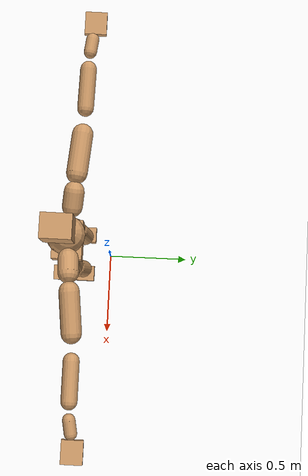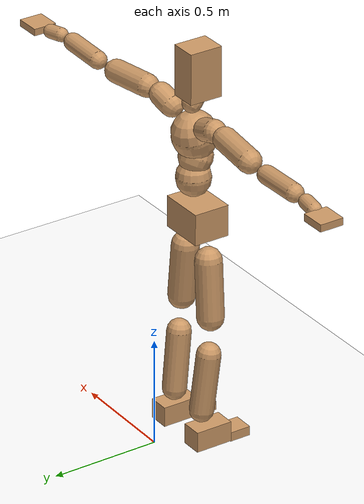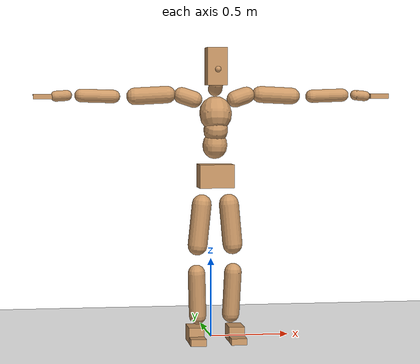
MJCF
<mujoco model="humanoid">
  <option integrator="implicitfast" />

  <visual>
    <global offwidth="1280" offheight="960" />
    <headlight active="1" ambient="0.34 0.34 0.34" diffuse="0.5 0.5 0.5" />
  </visual>

  <default>
    <joint damping="2" stiffness="2" armature="0.01" limited="true" solimplimit="0 .99 .01" />
    <geom condim="1" friction="0.7 0.005 0.0001" solimp=".99 .99 .003" solref="0.015 1" margin="0.001" rgba="0.8 0.6 .4 1" />
    <default class="smplcontact">
      <geom condim="3" friction="1. 0.005 0.0001" solref="0.015 1" solimp="0.98 0.98 0.001" priority="1" />
    </default>
    <default class="stiff_medium">
      <joint stiffness="10" />
    </default>
    <default class="stiff_medium_higher">
      <joint stiffness="50" />
    </default>
    <default class="stiff_high">
      <joint stiffness="100" />
    </default>
  </default>

  <asset>
    <texture type="skybox" builtin="gradient" rgb1="0.99 0.99 0.99" rgb2="0.608 0.828 0.892" width="100" />
    <texture builtin="flat" height="1278" mark="cross" markrgb="1 1 1" name="texgeom" random="0.01" rgb1="0.8 0.6 0.4" rgb2="0.8 0.6 0.4" type="cube" width="127" />
    <texture name="texplane" type="2d" builtin="checker" markrgb="1 1 1" rgb1="0.756 0.772 0.76" rgb2="0.6 0.6 0.6" width="100" height="100" />
    <material name="MatPlane" reflectance="0.5" texture="texplane" texrepeat="1 1" texuniform="true" />
    <material name="geom" texture="texgeom" texuniform="true" />
  </asset>

  <worldbody>
    <light name="tracking_light" pos="0 0 7" dir="0 0 -1" directional="true" cutoff="100" exponent="1" diffuse="1 1 1" specular="0.1 0.1 0.1" mode="trackcom" />
    <camera name="back" pos="0 3 2.4" xyaxes="-1 0 0 0 -1 2" mode="trackcom" />
    <camera name="side" pos="-3 0 2.4" xyaxes="0 -1 0 1 0 2" mode="trackcom" />
    <camera name="front_side" pos="-2.8 -2.8 0.8" xyaxes="0.5 -0.5 0 0.1 0.1 1" mode="trackcom" />
    <geom condim="3" name="floor" pos="0 0 0" rgba="1 1 1 1" size="100 100 .2" type="plane" material="MatPlane" />
    <body name="Pelvis" pos="-0.0018 -0.2233 1.05109" euler="90 0 0">
      <site name="Pelvis" size="0.01" />
      <freejoint name="Pelvis" />
      <geom type="box" pos="-0.0000 -0.0121 -0.0055" size="0.1069 0.0722 0.083" quat="1.0000 0.0000 0.0000 0.0000" density="3165.830099" name="Pelvis" />
      <body name="L_Hip" pos="0.0781875 -0.102825 -0.00765">
        <joint name="L_Hip_x" type="hinge" pos="0 0 0" axis="1 0 0" stiffness="12.190417346938776" range="-160.0 22.92" class="stiff_medium" damping="19.23943835853268" armature="0.013495335550763796"/>
        <joint name="L_Hip_y" type="hinge" pos="0 0 0" axis="0 1 0" stiffness="12.1624156122449" range="-70.0 70.0" class="stiff_medium" damping="12.013485255911053" armature="0.01186637857110307"/>
        <joint name="L_Hip_z" type="hinge" pos="0 0 0" axis="0 0 1" stiffness="12.164813061224491" range="-28.65 90.0" class="stiff_medium" damping="12.81394800146982" armature="0.013497721876857561"/>
        <geom type="capsule" density="2040.816327" fromto="0.0077625 -0.084375 -0.0010125 0.030825 -0.337725 -0.00405" size="0.0615" name="L_Hip" />
        <body name="L_Knee" pos="0.0385875 -0.4221 -0.0050625">
          <joint name="L_Knee_x" type="hinge" pos="0 0 0" axis="1 0 0" range="-5.16 171.89" damping="10.076823862713262" armature="0.013188848617403126" stiffness="2.4059714693877554"/>
          <joint name="L_Knee_y" type="hinge" pos="0 0 0" axis="0 1 0" range="-4.58 6.88" damping="9.486100019400169" armature="0.01159601950664257" stiffness="2.4250264693877552"/>
          <joint name="L_Knee_z" type="hinge" pos="0 0 0" axis="0 0 1" range="-6.88 4.58" damping="10.063496829521759" armature="0.013200099383969129" stiffness="2.3975664285714284"/>
          <geom type="capsule" density="1234.567901" fromto="-0.0030375 -0.08955 -0.0097875 -0.0122625 -0.3582 -0.039375" size="0.0541" name="L_Knee" />
          <body name="L_Ankle" pos="-0.0153 -0.44775 -0.0491625">
            <joint name="L_Ankle_x" type="hinge" pos="0 0 0" axis="1 0 0" range="-45.84 45.84" class="stiff_medium" damping="6.8975328184231675" armature="0.011747130867095487" stiffness="11.250018673469388"/>
            <joint name="L_Ankle_y" type="hinge" pos="0 0 0" axis="0 1 0" range="-74.48 22.92" class="stiff_medium" damping="3.4392113884775433" armature="0.011682135831686723" stiffness="11.250011836734695"/>
            <joint name="L_Ankle_z" type="hinge" pos="0 0 0" axis="0 0 1" range="-4.58 4.58" class="stiff_medium" damping="6.7519785458254615" armature="0.011256596119330203" stiffness="11.25"/>
            <geom type="box" pos="0.0262125 -0.0268875 0.027225" size="0.0483 0.0464 0.085" quat="1.0000 0.0000 0.0000 0.0000" density="449.071558" name="L_Ankle" class="smplcontact" />
            <body name="L_Toe" pos="0.0297 -0.062775 0.134213">
              <joint name="L_Toe_x" type="hinge" pos="0 0 0" axis="1 0 0" range="-91.67 22.92" armature="0.011009874139729875" damping="2.22585789368469" stiffness="2.25"/>
              <joint name="L_Toe_y" type="hinge" pos="0 0 0" axis="0 1 0" range="-4.58 4.58" armature="0.010711537859158219" damping="2.195493574716446" stiffness="2.25"/>
              <joint name="L_Toe_z" type="hinge" pos="0 0 0" axis="0 0 1" range="-4.58 4.58" armature="0.010108317957718379" damping="2.1327782540557916" stiffness="2.25"/>
              <geom type="box" pos="-0.003375 0.0061875 0.0279" size="0.0478 0.02 0.0496" quat="1.0000 0.0000 0.0000 0.0000" density="423.206892" name="L_Toe" class="smplcontact" />
            </body>
          </body>
        </body>
      </body>
      <body name="R_Hip" pos="-0.0761625 -0.101813 -0.0048375">
        <joint name="R_Hip_x" type="hinge" pos="0 0 0" axis="1 0 0" stiffness="12.190417346938776" range="-160.0 22.92" class="stiff_medium" damping="19.23943835853268" armature="0.013495335550763796"/>
        <joint name="R_Hip_y" type="hinge" pos="0 0 0" axis="0 1 0" stiffness="12.1624156122449" range="-70.0 70.0" class="stiff_medium" damping="12.013485255911053" armature="0.01186637857110307"/>
        <joint name="R_Hip_z" type="hinge" pos="0 0 0" axis="0 0 1" stiffness="12.164813061224491" range="-90.0 28.65" class="stiff_medium" damping="12.81394800146982" armature="0.013497721876857561"/>
        <geom type="capsule" density="2040.816327" fromto="-0.0086625 -0.0860625 -0.002025 -0.034425 -0.344362 -0.0079875" size="0.0606" name="R_Hip" />
        <body name="R_Knee" pos="-0.0430875 -0.430425 -0.0100125">
          <joint name="R_Knee_x" type="hinge" pos="0 0 0" axis="1 0 0" range="-5.16 171.89" damping="10.076823862713262" armature="0.013188848617403126" stiffness="2.4059714693877554"/>
          <joint name="R_Knee_y" type="hinge" pos="0 0 0" axis="0 1 0" range="-6.88 4.58" damping="9.486100019400169" armature="0.01159601950664257" stiffness="2.4250264693877552"/>
          <joint name="R_Knee_z" type="hinge" pos="0 0 0" axis="0 0 1" range="-4.58 6.88" damping="10.063496829521759" armature="0.013200099383969129" stiffness="2.3975664285714284"/>
          <geom type="capsule" density="1234.567901" fromto="0.0036 -0.0896625 -0.0095625 0.014175 -0.358537 -0.038025" size="0.0541" name="R_Knee" />
          <body name="R_Ankle" pos="0.017775 -0.4482 -0.0475875">
            <joint name="R_Ankle_x" type="hinge" pos="0 0 0" axis="1 0 0" range="-45.84 45.84" class="stiff_medium" damping="6.8975328184231675" armature="0.011747130867095487" stiffness="11.250018673469388"/>
            <joint name="R_Ankle_y" type="hinge" pos="0 0 0" axis="0 1 0" range="-22.92 74.48" class="stiff_medium" damping="3.4392113884775433" armature="0.011682135831686723" stiffness="11.250011836734695"/>
            <joint name="R_Ankle_z" type="hinge" pos="0 0 0" axis="0 0 1" range="-4.58 4.58" class="stiff_medium" damping="6.7519785458254615" armature="0.011256596119330203" stiffness="11.25"/>
            <geom type="box" pos="-0.02385 -0.019575 0.0288" size="0.0483 0.0478 0.0865" quat="1.0000 0.0000 0.0000 0.0000" density="434.700981" name="R_Ankle" class="smplcontact" />
            <body name="R_Toe" pos="-0.028575 -0.0541125 0.138713">
              <joint name="R_Toe_x" type="hinge" pos="0 0 0" axis="1 0 0" range="-91.67 22.92" armature="0.011009874139729875" damping="2.22585789368469" stiffness="2.25"/>
              <joint name="R_Toe_y" type="hinge" pos="0 0 0" axis="0 1 0" range="-4.58 4.58" armature="0.010711537859158219" damping="2.195493574716446" stiffness="2.25"/>
              <joint name="R_Toe_z" type="hinge" pos="0 0 0" axis="0 0 1" range="-4.58 4.58" armature="0.010108317957718379" damping="2.1327782540557916" stiffness="2.25"/>
              <geom type="box" pos="0.004725 0.0050625 0.0255375" size="0.0479 0.0216 0.0493" quat="1.0000 0.0000 0.0000 0.0000" density="407.384095" name="R_Toe" class="smplcontact" />
            </body>
          </body>
        </body>
      </body>
      <body name="Torso" pos="-0.0025 0.109 -0.0267">
        <joint name="Torso_x" type="hinge" pos="0 0 0" axis="1 0 0" range="-25.78 57.3" class="stiff_medium" damping="16.94478917737132" armature="0.011576079564418827" stiffness="11.023723673469387"/>
        <joint name="Torso_y" type="hinge" pos="0 0 0" axis="0 1 0" range="-57.3 57.3" class="stiff_high" damping="29.115087567135376" armature="0.01937626790595331" stiffness="109.37198124999998"/>
        <joint name="Torso_z" type="hinge" pos="0 0 0" axis="0 0 1" range="-34.38 34.38" class="stiff_high" damping="24.64077151532871" armature="0.014228244849331766" stiffness="106.68350652173912"/>
        <geom type="capsule" density="2040.816327" fromto="0.0025 0.0608 0.0005 0.003 0.0743 0.0006" size="0.0769" name="Torso" />
        <body name="Spine" pos="0.0055 0.1352 0.0011">
          <joint name="Spine_x" type="hinge" pos="0 0 0" axis="1 0 0" stiffness="11.23382224489796" range="-25.78 57.3" class="stiff_medium" damping="17.41106230963078" armature="0.011993349058515354"/>
          <joint name="Spine_y" type="hinge" pos="0 0 0" axis="0 1 0" stiffness="11.67224088888889" range="-57.3 57.3" class="stiff_high" damping="12.051053820080996" armature="0.019440876268553408"/>
          <joint name="Spine_z" type="hinge" pos="0 0 0" axis="0 0 1" stiffness="22.9563125" range="-34.38 34.38" class="stiff_high" damping="16.317554444807215" armature="0.016109257231005366"/>
          <geom type="capsule" density="2040.816327" fromto="0.0007 0.0238 0.0114 0.0008 0.0291 0.014" size="0.0755" name="Spine" />
          <body name="Chest" pos="0.0015 0.0529 0.0254">
            <joint name="Chest_x" type="hinge" pos="0 0 0" axis="1 0 0" stiffness="11.776115531914895" range="-25.78 57.3" class="stiff_medium" damping="18.021102303759776" armature="0.012256829035287803"/>
            <joint name="Chest_y" type="hinge" pos="0 0 0" axis="0 1 0" stiffness="13.448267333333334" range="-57.3 57.3" class="stiff_high" damping="12.937740431789003" armature="0.019447803587290643"/>
            <joint name="Chest_z" type="hinge" pos="0 0 0" axis="0 0 1" stiffness="23.267014782608697" range="-34.38 34.38" class="stiff_high" damping="16.847528832624963" armature="0.01694334891512798"/>
            <geom type="capsule" density="2040.816327" fromto="-0.0009 0.0682 -0.0173 -0.001 0.0833 -0.0212" size="0.1002" name="Chest" />
            <body name="Neck" pos="-0.0028 0.2139 -0.0429">
              <joint name="Neck_x" type="hinge" pos="0 0 0" axis="1 0 0" range="-28.65 57.3" class="stiff_medium_higher" damping="10.000000000000014" armature="0.01000000000000003" stiffness="50.0"/>
              <joint name="Neck_y" type="hinge" pos="0 0 0" axis="0 1 0" range="-40.11 40.11" class="stiff_medium_higher" damping="10.0" armature="0.01" stiffness="50.0"/>
              <joint name="Neck_z" type="hinge" pos="0 0 0" axis="0 0 1" range="-40.11 40.11" class="stiff_medium_higher" damping="9.999999999999993" armature="0.009999999999999985" stiffness="50.0"/>
              <geom type="capsule" density="1000" fromto="0.001 0.013 0.0103 0.0041 0.052 0.0411" size="0.0436" name="Neck" />
              <body name="Head" pos="0.0052 0.065 0.0513">
                <joint name="Head_x" type="hinge" pos="0 0 0" axis="1 0 0" range="-28.65 57.3" class="stiff_medium_higher" damping="2.0000000000000067" armature="0.01000000000000007" stiffness="50.0"/>
                <joint name="Head_y" type="hinge" pos="0 0 0" axis="0 1 0" range="-40.11 40.11" class="stiff_medium_higher" damping="2.0" armature="0.01" stiffness="50.0"/>
                <joint name="Head_z" type="hinge" pos="0 0 0" axis="0 0 1" range="-40.11 40.11" class="stiff_medium_higher" damping="2.0000000000000036" armature="0.010000000000000038" stiffness="50.0"/>
                <geom type="box" pos="-0.0042 0.0876 -0.0116" size="0.0606 0.1154 0.076" quat="1.0000 0.0000 0.0000 0.0000" density="1018.069894" name="Head" />
                <geom type="capsule" name="nose" size="0.02 0.01" pos="0 0.07 0.05" quat="1 0 0 0" mass="0" contype="0" conaffinity="0" />
              </body>
            </body>
            <body name="L_Thorax" pos="0.10244 0.15821 -0.04433">
              <joint name="L_Thorax_x" type="hinge" pos="0 0 0" axis="1 0 0" range="-10.89 4.58" class="stiff_medium_higher" damping="31.589735797957733" armature="0.016223873504270177" stiffness="76.88603214285715"/>
              <joint name="L_Thorax_y" type="hinge" pos="0 0 0" axis="0 1 0" range="-28.65 17.19" class="stiff_medium_higher" damping="34.89989559971406" armature="0.01967496307175568" stiffness="77.38278265306123"/>
              <joint name="L_Thorax_z" type="hinge" pos="0 0 0" axis="0 0 1" range="-31.51 40.11" class="stiff_medium_higher" damping="34.901462278801546" armature="0.019678125977203684" stiffness="77.37729132653061"/>
              <geom type="capsule" density="1000" fromto="0.02366 0.00793 -0.00234 0.09464 0.03172 -0.00923" size="0.0521" name="L_Thorax" />
              <body name="L_Shoulder" pos="0.1183 0.03965 -0.01157">
                <joint name="L_Shoulder_x" type="hinge" pos="0 0 0" axis="1 0 0" range="-97.4 97.4" class="stiff_medium" damping="9.029989056678957" armature="0.014800063709013891" stiffness="15.304120000000001"/>
                <joint name="L_Shoulder_y" type="hinge" pos="0 0 0" axis="0 1 0" range="-108.86 80.21" class="stiff_medium" damping="10.416659800941957" armature="0.019521721968520905" stiffness="15.439610408163267"/>
                <joint name="L_Shoulder_z" type="hinge" pos="0 0 0" axis="0 0 1" range="-97.4 85.94" class="stiff_medium" damping="10.414978319288076" armature="0.019525527681653106" stiffness="15.431617857142857"/>
                <geom type="capsule" density="1000" fromto="0.06747 -0.00338 -0.00715 0.27001 -0.01326 -0.0286" size="0.0517" name="L_Shoulder" />
                <body name="L_Elbow" pos="0.33748 -0.01664 -0.03575">
                  <joint name="L_Elbow_x" type="hinge" pos="0 0 0" axis="1 0 0" range="-17.19 4.58" damping="6.893935965131405" armature="0.012655354053031287" stiffness="3.0043475918367353"/>
                  <joint name="L_Elbow_y" type="hinge" pos="0 0 0" axis="0 1 0" range="-180.0 17.19" damping="8.400044856786575" armature="0.018780901424265504" stiffness="3.005638632653061"/>
                  <joint name="L_Elbow_z" type="hinge" pos="0 0 0" axis="0 0 1" range="-100.84 4.58" damping="8.401427491655665" armature="0.01880082195466484" stiffness="3.003442469387755"/>
                  <geom type="capsule" density="1000" fromto="0.06474 0.00234 -0.00026 0.25922 0.00936 -0.00117" size="0.0405" name="L_Elbow" />
                  <body name="L_Wrist" pos="0.32396 0.0117 -0.00156">
                    <joint name="L_Wrist_x" type="hinge" pos="0 0 0" axis="1 0 0" range="-180.0 22.92" armature="0.012290327941728152" damping="2.5957833940279116" stiffness="2.7412171020408165"/>
                    <joint name="L_Wrist_y" type="hinge" pos="0 0 0" axis="0 1 0" range="-17.19 17.19" armature="0.016530608092611344" damping="3.0218064127612143" stiffness="2.7619413469387752"/>
                    <joint name="L_Wrist_z" type="hinge" pos="0 0 0" axis="0 0 1" range="-22.92 22.92" armature="0.016761001490565964" damping="3.0381836187287776" stiffness="2.7535823877551024"/>
                    <geom type="capsule" density="1000" fromto="0.02184 -0.00208 -0.0039 0.08736 -0.00845 -0.0156" size="0.0318" name="L_Wrist" class="smplcontact" />
                    <body name="L_Hand" pos="0.1092 -0.01066 -0.01937">
                      <joint name="L_Hand_x" type="hinge" pos="0 0 0" axis="1 0 0" range="-17.19 17.19" armature="0.010300606507591547" damping="2.314371487887717" stiffness="2.5999999999999996"/>
                      <joint name="L_Hand_y" type="hinge" pos="0 0 0" axis="0 1 0" range="-51.57 51.57" armature="0.013635420978089419" damping="2.6627840521917086" stiffness="2.5999999999999996"/>
                      <joint name="L_Hand_z" type="hinge" pos="0 0 0" axis="0 0 1" range="-91.67 91.67" armature="0.01452436133904215" damping="2.748211763365756" stiffness="2.5999999999999996"/>
                      <geom type="box" pos="0.06409 0.0013 -0.00754" size="0.0585 0.0158 0.0538" quat="1.0000 0.0000 0.0000 0.0000" density="400.552564" name="L_Hand" class="smplcontact" />
                    </body>
                  </body>
                </body>
              </body>
            </body>
            <body name="R_Thorax" pos="-0.10634 0.15444 -0.05018">
              <joint name="R_Thorax_x" type="hinge" pos="0 0 0" axis="1 0 0" range="-10.89 4.58" class="stiff_medium_higher" damping="31.589735797957733" armature="0.016223873504270177" stiffness="76.88603214285715"/>
              <joint name="R_Thorax_y" type="hinge" pos="0 0 0" axis="0 1 0" range="-17.19 28.65" class="stiff_medium_higher" damping="34.89989559971406" armature="0.01967496307175568" stiffness="77.38278265306123"/>
              <joint name="R_Thorax_z" type="hinge" pos="0 0 0" axis="0 0 1" range="-40.11 31.51" class="stiff_medium_higher" damping="34.901462278801546" armature="0.019678125977203684" stiffness="77.37729132653061"/>
              <geom type="capsule" density="1000" fromto="-0.02496 0.00845 -0.00234 -0.09984 0.0338 -0.00949" size="0.0511" name="R_Thorax" />
              <body name="R_Shoulder" pos="-0.1248 0.04238 -0.01183">
                <joint name="R_Shoulder_x" type="hinge" pos="0 0 0" axis="1 0 0" range="-97.4 97.4" class="stiff_medium" damping="9.029989056678957" armature="0.014800063709013891" stiffness="15.304120000000001"/>
                <joint name="R_Shoulder_y" type="hinge" pos="0 0 0" axis="0 1 0" range="-80.21 108.86" class="stiff_medium" damping="10.416659800941957" armature="0.019521721968520905" stiffness="15.439610408163267"/>
                <joint name="R_Shoulder_z" type="hinge" pos="0 0 0" axis="0 0 1" range="-85.94 97.4" class="stiff_medium" damping="10.414978319288076" armature="0.019525527681653106" stiffness="15.431617857142857"/>
                <geom type="capsule" density="1000" fromto="-0.06591 -0.00351 -0.00559 -0.2639 -0.01391 -0.02223" size="0.0531" name="R_Shoulder" />
                <body name="R_Elbow" pos="-0.32981 -0.01729 -0.02782">
                  <joint name="R_Elbow_x" type="hinge" pos="0 0 0" axis="1 0 0" range="-17.19 4.58" damping="6.893935965131405" armature="0.012655354053031287" stiffness="3.0043475918367353"/>
                  <joint name="R_Elbow_y" type="hinge" pos="0 0 0" axis="0 1 0" range="-17.19 180.0" damping="8.400044856786575" armature="0.018780901424265504" stiffness="3.005638632653061"/>
                  <joint name="R_Elbow_z" type="hinge" pos="0 0 0" axis="0 0 1" range="-4.58 100.84" damping="8.401427491655665" armature="0.01880082195466484" stiffness="3.003442469387755"/>
                  <geom type="capsule" density="1000" fromto="-0.06643 0.00208 -0.00143 -0.26546 0.00806 -0.00572" size="0.0408" name="R_Elbow" />
                  <body name="R_Wrist" pos="-0.33189 0.01014 -0.00728">
                    <joint name="R_Wrist_x" type="hinge" pos="0 0 0" axis="1 0 0" range="-180.0 22.92" armature="0.012290327941728152" damping="2.5957833940279116" stiffness="2.7412171020408165"/>
                    <joint name="R_Wrist_y" type="hinge" pos="0 0 0" axis="0 1 0" range="-17.19 17.19" armature="0.016530608092611344" damping="3.0218064127612143" stiffness="2.7619413469387752"/>
                    <joint name="R_Wrist_z" type="hinge" pos="0 0 0" axis="0 0 1" range="-22.92 22.92" armature="0.016761001490565964" damping="3.0381836187287776" stiffness="2.7535823877551024"/>
                    <geom type="capsule" density="1000" fromto="-0.02197 -0.00156 -0.00273 -0.08801 -0.00637 -0.01079" size="0.0326" name="R_Wrist" class="smplcontact" />
                    <body name="R_Hand" pos="-0.10998 -0.00793 -0.01339">
                      <joint name="R_Hand_x" type="hinge" pos="0 0 0" axis="1 0 0" range="-17.19 17.19" armature="0.010300606507591547" damping="2.314371487887717" stiffness="2.5999999999999996"/>
                      <joint name="R_Hand_y" type="hinge" pos="0 0 0" axis="0 1 0" range="-51.57 51.57" armature="0.013635420978089419" damping="2.6627840521917086" stiffness="2.5999999999999996"/>
                      <joint name="R_Hand_z" type="hinge" pos="0 0 0" axis="0 0 1" range="-91.67 91.67" armature="0.01452436133904215" damping="2.748211763365756" stiffness="2.5999999999999996"/>
                      <geom type="box" pos="-0.06006 -0.00117 -0.01027" size="0.0569 0.0164 0.0546" quat="1.0000 0.0000 0.0000 0.0000" density="403.679611" name="R_Hand" class="smplcontact" />
                    </body>
                  </body>
                </body>
              </body>
            </body>
          </body>
        </body>
      </body>
    </body>
  </worldbody>
  <actuator>
    <general name="L_Hip_x" joint="L_Hip_x" biastype="affine" gainprm="350.267339766903" biasprm="-262.4898695344799 -219.42751224489797 -2.5652584478043576" ctrllimited="true" ctrlrange="-1 1" forcerange="-438.85502448979594 438.85502448979594" />
    <general name="L_Hip_y" joint="L_Hip_y" biastype="affine" gainprm="267.4654887613407" biasprm="0.0 -218.9234810204082 -2.4026970511822108" ctrllimited="true" ctrlrange="-1 1" forcerange="-437.8469620408164 437.8469620408164" />
    <general name="L_Hip_z" joint="L_Hip_z" biastype="affine" gainprm="226.72168417679922" biasprm="117.23030193212499 -218.96663510204084 -2.562789600293964" ctrllimited="true" ctrlrange="-1 1" forcerange="-437.9332702040817 437.9332702040817" />
    <general name="L_Knee_x" joint="L_Knee_x" biastype="affine" gainprm="334.5617487428154" biasprm="315.0606064269393 -216.53743224489799 -2.5192059656783155" ctrllimited="true" ctrlrange="-1 1" forcerange="-433.07486448979597 433.07486448979597" />
    <general name="L_Knee_y" joint="L_Knee_y" biastype="affine" gainprm="21.82684590193453" biasprm="4.380606071068885 -218.25238224489797 -2.3715250048500423" ctrllimited="true" ctrlrange="-1 1" forcerange="-436.50476448979595 436.50476448979595" />
    <general name="L_Knee_z" joint="L_Knee_z" biastype="affine" gainprm="21.579687329883924" biasprm="-4.331001820133772 -215.78097857142856 -2.5158742073804397" ctrllimited="true" ctrlrange="-1 1" forcerange="-431.5619571428571 431.5619571428571" />
    <general name="L_Ankle_x" joint="L_Ankle_x" biastype="affine" gainprm="81.00610103169612" biasprm="0.0 -101.2501680612245 -2.299177606141056" ctrllimited="true" ctrlrange="-1 1" forcerange="-202.500336122449 202.500336122449" />
    <general name="L_Ankle_y" joint="L_Ankle_y" biastype="affine" gainprm="86.06009430266938" biasprm="-45.557068400879196 -101.25010653061226 -2.292807592318362" ctrllimited="true" ctrlrange="-1 1" forcerange="-202.5002130612245 202.5002130612245" />
    <general name="L_Ankle_z" joint="L_Ankle_z" biastype="affine" gainprm="8.093528073810704" biasprm="0.0 -101.25 -2.250659515275154" ctrllimited="true" ctrlrange="-1 1" forcerange="-202.5 202.5" />
    <general name="L_Toe_x" joint="L_Toe_x" biastype="affine" gainprm="80.99889798934223" biasprm="-48.59651136021711 -81.0 -0.8903431574738759" ctrllimited="true" ctrlrange="-1 1" forcerange="-162.0 162.0" />
    <general name="L_Toe_y" joint="L_Toe_y" biastype="affine" gainprm="6.474822459048563" biasprm="0.0 -81.0 -0.8781974298865785" ctrllimited="true" ctrlrange="-1 1" forcerange="-162.0 162.0" />
    <general name="L_Toe_z" joint="L_Toe_z" biastype="affine" gainprm="6.474822459048563" biasprm="0.0 -81.0 -0.8531113016223166" ctrllimited="true" ctrlrange="-1 1" forcerange="-162.0 162.0" />
    <general name="R_Hip_x" joint="R_Hip_x" biastype="affine" gainprm="350.267339766903" biasprm="-262.4898695344799 -219.42751224489797 -2.5652584478043576" ctrllimited="true" ctrlrange="-1 1" forcerange="-438.85502448979594 438.85502448979594" />
    <general name="R_Hip_y" joint="R_Hip_y" biastype="affine" gainprm="267.4654887613407" biasprm="0.0 -218.9234810204082 -2.4026970511822108" ctrllimited="true" ctrlrange="-1 1" forcerange="-437.8469620408164 437.8469620408164" />
    <general name="R_Hip_z" joint="R_Hip_z" biastype="affine" gainprm="226.72168417679922" biasprm="-117.23030193212499 -218.96663510204084 -2.562789600293964" ctrllimited="true" ctrlrange="-1 1" forcerange="-437.9332702040817 437.9332702040817" />
    <general name="R_Knee_x" joint="R_Knee_x" biastype="affine" gainprm="334.5617487428154" biasprm="315.0606064269393 -216.53743224489799 -2.5192059656783155" ctrllimited="true" ctrlrange="-1 1" forcerange="-433.07486448979597 433.07486448979597" />
    <general name="R_Knee_y" joint="R_Knee_y" biastype="affine" gainprm="21.82684590193453" biasprm="-4.380606071068885 -218.25238224489797 -2.3715250048500423" ctrllimited="true" ctrlrange="-1 1" forcerange="-436.50476448979595 436.50476448979595" />
    <general name="R_Knee_z" joint="R_Knee_z" biastype="affine" gainprm="21.579687329883924" biasprm="4.331001820133772 -215.78097857142856 -2.5158742073804397" ctrllimited="true" ctrlrange="-1 1" forcerange="-431.5619571428571 431.5619571428571" />
    <general name="R_Ankle_x" joint="R_Ankle_x" biastype="affine" gainprm="81.00610103169612" biasprm="0.0 -101.2501680612245 -2.299177606141056" ctrllimited="true" ctrlrange="-1 1" forcerange="-202.500336122449 202.500336122449" />
    <general name="R_Ankle_y" joint="R_Ankle_y" biastype="affine" gainprm="86.06009430266938" biasprm="45.557068400879196 -101.25010653061226 -2.292807592318362" ctrllimited="true" ctrlrange="-1 1" forcerange="-202.5002130612245 202.5002130612245" />
    <general name="R_Ankle_z" joint="R_Ankle_z" biastype="affine" gainprm="8.093528073810704" biasprm="0.0 -101.25 -2.250659515275154" ctrllimited="true" ctrlrange="-1 1" forcerange="-202.5 202.5" />
    <general name="R_Toe_x" joint="R_Toe_x" biastype="affine" gainprm="80.99889798934223" biasprm="-48.59651136021711 -81.0 -0.8903431574738759" ctrllimited="true" ctrlrange="-1 1" forcerange="-162.0 162.0" />
    <general name="R_Toe_y" joint="R_Toe_y" biastype="affine" gainprm="6.474822459048563" biasprm="0.0 -81.0 -0.8781974298865785" ctrllimited="true" ctrlrange="-1 1" forcerange="-162.0 162.0" />
    <general name="R_Toe_z" joint="R_Toe_z" biastype="affine" gainprm="6.474822459048563" biasprm="0.0 -81.0 -0.8531113016223166" ctrllimited="true" ctrlrange="-1 1" forcerange="-162.0 162.0" />
    <general name="Torso_x" joint="Torso_x" biastype="affine" gainprm="191.81537709933156" biasprm="72.77347961207185 -264.5693681632653 -4.518610447299019" ctrllimited="true" ctrlrange="-1 1" forcerange="-396.85405224489796 396.85405224489796" />
    <general name="Torso_y" joint="Torso_y" biastype="affine" gainprm="262.51209058192023" biasprm="0.0 -262.492755 -5.823017513427075" ctrllimited="true" ctrlrange="-1 1" forcerange="-393.7391324999999 393.7391324999999" />
    <general name="Torso_z" joint="Torso_z" biastype="affine" gainprm="153.63556556747483" biasprm="0.0 -256.0404156521739 -4.9281543030657415" ctrllimited="true" ctrlrange="-1 1" forcerange="-384.0606234782608 384.0606234782608" />
    <general name="Spine_x" joint="Spine_x" biastype="affine" gainprm="195.47114151254812" biasprm="74.16045234082229 -269.61173387755105 -4.6429499492348745" ctrllimited="true" ctrlrange="-1 1" forcerange="-404.41760081632657 404.41760081632657" />
    <general name="Spine_y" joint="Spine_y" biastype="affine" gainprm="280.1544163778229" biasprm="0.0 -280.13378133333333 -6.025526910040498" ctrllimited="true" ctrlrange="-1 1" forcerange="-420.200672 420.200672" />
    <general name="Spine_z" joint="Spine_z" biastype="affine" gainprm="165.29762515644848" biasprm="0.0 -275.47575 -5.439184814935738" ctrllimited="true" ctrlrange="-1 1" forcerange="-413.213625 413.213625" />
    <general name="Chest_x" joint="Chest_x" biastype="affine" gainprm="204.90717188021173" biasprm="77.74041956745634 -282.62677276595747 -4.805627281002606" ctrllimited="true" ctrlrange="-1 1" forcerange="-423.94015914893623 423.94015914893623" />
    <general name="Chest_y" joint="Chest_y" biastype="affine" gainprm="322.78219083444463" biasprm="0.0 -322.758416 -6.468870215894501" ctrllimited="true" ctrlrange="-1 1" forcerange="-484.1376240000001 484.1376240000001" />
    <general name="Chest_z" joint="Chest_z" biastype="affine" gainprm="167.53484637592376" biasprm="0.0 -279.20417739130437 -5.615842944208321" ctrllimited="true" ctrlrange="-1 1" forcerange="-418.8062660869566 418.8062660869566" />
    <general name="Neck_x" joint="Neck_x" biastype="affine" gainprm="27.00198885760427" biasprm="9.000662952534757 -36.0 -0.8000000000000012" ctrllimited="true" ctrlrange="-1 1" forcerange="-72.0 72.0" />
    <general name="Neck_y" joint="Neck_y" biastype="affine" gainprm="25.20185626709732" biasprm="0.0 -36.0 -0.8" ctrllimited="true" ctrlrange="-1 1" forcerange="-72.0 72.0" />
    <general name="Neck_z" joint="Neck_z" biastype="affine" gainprm="25.20185626709732" biasprm="0.0 -36.0 -0.7999999999999994" ctrllimited="true" ctrlrange="-1 1" forcerange="-72.0 72.0" />
    <general name="Head_x" joint="Head_x" biastype="affine" gainprm="18.001325905069514" biasprm="6.000441968356505 -24.0 -0.8000000000000027" ctrllimited="true" ctrlrange="-1 1" forcerange="-48.0 48.0" />
    <general name="Head_y" joint="Head_y" biastype="affine" gainprm="16.801237511398213" biasprm="0.0 -24.0 -0.8" ctrllimited="true" ctrlrange="-1 1" forcerange="-48.0 48.0" />
    <general name="Head_z" joint="Head_z" biastype="affine" gainprm="16.801237511398213" biasprm="0.0 -24.0 -0.8000000000000015" ctrllimited="true" ctrlrange="-1 1" forcerange="-48.0 48.0" />
    <general name="L_Thorax_x" joint="L_Thorax_x" biastype="affine" gainprm="24.911299101430362" biasprm="-10.160975910150333 -184.52647714285715 -2.527178863836619" ctrllimited="true" ctrlrange="-1 1" forcerange="-369.0529542857143 369.0529542857143" />
    <general name="L_Thorax_y" joint="L_Thorax_y" biastype="affine" gainprm="74.29294346554212" biasprm="-18.57323586638553 -185.71867836734694 -2.7919916479771247" ctrllimited="true" ctrlrange="-1 1" forcerange="-371.4373567346939 371.4373567346939" />
    <general name="L_Thorax_z" joint="L_Thorax_z" biastype="affine" gainprm="116.06638363736599" biasprm="13.937041319203399 -185.70549918367348 -2.7921169823041243" ctrllimited="true" ctrlrange="-1 1" forcerange="-371.41099836734696 371.41099836734696" />
    <general name="L_Shoulder_x" joint="L_Shoulder_x" biastype="affine" gainprm="124.8779970044095" biasprm="0.0 -73.459776 -2.4079970817810556" ctrllimited="true" ctrlrange="-1 1" forcerange="-146.919552 146.919552" />
    <general name="L_Shoulder_y" joint="L_Shoulder_y" biastype="affine" gainprm="122.27778721627745" biasprm="-18.528897253643354 -74.11012995918368 -2.777775946917856" ctrllimited="true" ctrlrange="-1 1" forcerange="-148.22025991836736 148.22025991836736" />
    <general name="L_Shoulder_z" joint="L_Shoulder_z" biastype="affine" gainprm="118.51062714799397" biasprm="-7.40772219437119 -74.0717657142857 -2.777327551810154" ctrllimited="true" ctrlrange="-1 1" forcerange="-148.1435314285714 148.1435314285714" />
    <general name="L_Elbow_x" joint="L_Elbow_x" biastype="affine" gainprm="20.54747587592092" biasprm="-11.901868203737386 -108.15651330612246 -1.1030297544210248" ctrllimited="true" ctrlrange="-1 1" forcerange="-216.31302661224493 216.31302661224493" />
    <general name="L_Elbow_y" joint="L_Elbow_y" biastype="affine" gainprm="186.19650463217005" biasprm="-153.73321628461693 -108.20299077551019 -1.3440071770858522" ctrllimited="true" ctrlrange="-1 1" forcerange="-216.40598155102037 216.40598155102037" />
    <general name="L_Elbow_z" joint="L_Elbow_z" biastype="affine" gainprm="99.4700192692226" biasprm="-90.82701626688834 -108.12392889795919 -1.3442283986649066" ctrllimited="true" ctrlrange="-1 1" forcerange="-216.24785779591838 216.24785779591838" />
    <general name="L_Wrist_x" joint="L_Wrist_x" biastype="affine" gainprm="29.125065357690858" biasprm="-22.545659700305933 -16.447302612244897 -1.0383133576111647" ctrllimited="true" ctrlrange="-1 1" forcerange="-32.894605224489794 32.894605224489794" />
    <general name="L_Wrist_y" joint="L_Wrist_y" biastype="affine" gainprm="4.971860631693158" biasprm="0.0 -16.571648081632652 -1.2087225651044857" ctrllimited="true" ctrlrange="-1 1" forcerange="-33.143296163265305 33.143296163265305" />
    <general name="L_Wrist_z" joint="L_Wrist_z" biastype="affine" gainprm="6.609084529125214" biasprm="0.0 -16.521494326530615 -1.2152734474915112" ctrllimited="true" ctrlrange="-1 1" forcerange="-33.04298865306123 33.04298865306123" />
    <general name="L_Hand_x" joint="L_Hand_x" biastype="affine" gainprm="4.680344735318074" biasprm="0.0 -15.599999999999998 -0.9257485951550868" ctrllimited="true" ctrlrange="-1 1" forcerange="-31.199999999999996 31.199999999999996" />
    <general name="L_Hand_y" joint="L_Hand_y" biastype="affine" gainprm="14.041034205954219" biasprm="0.0 -15.599999999999998 -1.0651136208766834" ctrllimited="true" ctrlrange="-1 1" forcerange="-31.199999999999996 31.199999999999996" />
    <general name="L_Hand_z" joint="L_Hand_z" biastype="affine" gainprm="24.959115874729946" biasprm="0.0 -15.599999999999998 -1.0992847053463024" ctrllimited="true" ctrlrange="-1 1" forcerange="-31.199999999999996 31.199999999999996" />
    <general name="R_Thorax_x" joint="R_Thorax_x" biastype="affine" gainprm="24.911299101430362" biasprm="-10.160975910150333 -184.52647714285715 -2.527178863836619" ctrllimited="true" ctrlrange="-1 1" forcerange="-369.0529542857143 369.0529542857143" />
    <general name="R_Thorax_y" joint="R_Thorax_y" biastype="affine" gainprm="74.29294346554212" biasprm="18.57323586638552 -185.71867836734694 -2.7919916479771247" ctrllimited="true" ctrlrange="-1 1" forcerange="-371.4373567346939 371.4373567346939" />
    <general name="R_Thorax_z" joint="R_Thorax_z" biastype="affine" gainprm="116.06638363736599" biasprm="-13.937041319203399 -185.70549918367348 -2.7921169823041243" ctrllimited="true" ctrlrange="-1 1" forcerange="-371.41099836734696 371.41099836734696" />
    <general name="R_Shoulder_x" joint="R_Shoulder_x" biastype="affine" gainprm="124.8779970044095" biasprm="0.0 -73.459776 -2.4079970817810556" ctrllimited="true" ctrlrange="-1 1" forcerange="-146.919552 146.919552" />
    <general name="R_Shoulder_y" joint="R_Shoulder_y" biastype="affine" gainprm="122.27778721627745" biasprm="18.528897253643354 -74.11012995918368 -2.777775946917856" ctrllimited="true" ctrlrange="-1 1" forcerange="-148.22025991836736 148.22025991836736" />
    <general name="R_Shoulder_z" joint="R_Shoulder_z" biastype="affine" gainprm="118.51062714799397" biasprm="7.407722194371173 -74.0717657142857 -2.777327551810154" ctrllimited="true" ctrlrange="-1 1" forcerange="-148.1435314285714 148.1435314285714" />
    <general name="R_Elbow_x" joint="R_Elbow_x" biastype="affine" gainprm="20.54747587592092" biasprm="-11.901868203737386 -108.15651330612246 -1.1030297544210248" ctrllimited="true" ctrlrange="-1 1" forcerange="-216.31302661224493 216.31302661224493" />
    <general name="R_Elbow_y" joint="R_Elbow_y" biastype="affine" gainprm="186.19650463217005" biasprm="153.73321628461693 -108.20299077551019 -1.3440071770858522" ctrllimited="true" ctrlrange="-1 1" forcerange="-216.40598155102037 216.40598155102037" />
    <general name="R_Elbow_z" joint="R_Elbow_z" biastype="affine" gainprm="99.4700192692226" biasprm="90.82701626688832 -108.12392889795919 -1.3442283986649066" ctrllimited="true" ctrlrange="-1 1" forcerange="-216.24785779591838 216.24785779591838" />
    <general name="R_Wrist_x" joint="R_Wrist_x" biastype="affine" gainprm="29.125065357690858" biasprm="-22.545659700305933 -16.447302612244897 -1.0383133576111647" ctrllimited="true" ctrlrange="-1 1" forcerange="-32.894605224489794 32.894605224489794" />
    <general name="R_Wrist_y" joint="R_Wrist_y" biastype="affine" gainprm="4.971860631693158" biasprm="0.0 -16.571648081632652 -1.2087225651044857" ctrllimited="true" ctrlrange="-1 1" forcerange="-33.143296163265305 33.143296163265305" />
    <general name="R_Wrist_z" joint="R_Wrist_z" biastype="affine" gainprm="6.609084529125214" biasprm="0.0 -16.521494326530615 -1.2152734474915112" ctrllimited="true" ctrlrange="-1 1" forcerange="-33.04298865306123 33.04298865306123" />
    <general name="R_Hand_x" joint="R_Hand_x" biastype="affine" gainprm="4.680344735318074" biasprm="0.0 -15.599999999999998 -0.9257485951550868" ctrllimited="true" ctrlrange="-1 1" forcerange="-31.199999999999996 31.199999999999996" />
    <general name="R_Hand_y" joint="R_Hand_y" biastype="affine" gainprm="14.041034205954219" biasprm="0.0 -15.599999999999998 -1.0651136208766834" ctrllimited="true" ctrlrange="-1 1" forcerange="-31.199999999999996 31.199999999999996" />
    <general name="R_Hand_z" joint="R_Hand_z" biastype="affine" gainprm="24.959115874729946" biasprm="0.0 -15.599999999999998 -1.0992847053463024" ctrllimited="true" ctrlrange="-1 1" forcerange="-31.199999999999996 31.199999999999996" />
  </actuator>
  <contact>
    <exclude body1="Torso" body2="Chest" />
    <exclude body1="Head" body2="Chest" />
    <exclude body1="R_Knee" body2="R_Toe" />
    <exclude body1="R_Knee" body2="L_Ankle" />
    <exclude body1="R_Knee" body2="L_Toe" />
    <exclude body1="L_Knee" body2="L_Toe" />
    <exclude body1="L_Knee" body2="R_Ankle" />
    <exclude body1="L_Knee" body2="R_Toe" />
    <exclude body1="L_Shoulder" body2="Chest" />
    <exclude body1="R_Shoulder" body2="Chest" />
  </contact>
  <sensor>
    <framelinvel name="sensor_Pelvis_framelinvel" objtype="xbody" objname="Pelvis" />
    <framelinvel name="sensor_L_Hip_framelinvel" objtype="xbody" objname="L_Hip" />
    <framelinvel name="sensor_L_Knee_framelinvel" objtype="xbody" objname="L_Knee" />
    <framelinvel name="sensor_L_Ankle_framelinvel" objtype="xbody" objname="L_Ankle" />
    <framelinvel name="sensor_L_Toe_framelinvel" objtype="xbody" objname="L_Toe" />
    <framelinvel name="sensor_R_Hip_framelinvel" objtype="xbody" objname="R_Hip" />
    <framelinvel name="sensor_R_Knee_framelinvel" objtype="xbody" objname="R_Knee" />
    <framelinvel name="sensor_R_Ankle_framelinvel" objtype="xbody" objname="R_Ankle" />
    <framelinvel name="sensor_R_Toe_framelinvel" objtype="xbody" objname="R_Toe" />
    <framelinvel name="sensor_Torso_framelinvel" objtype="xbody" objname="Torso" />
    <framelinvel name="sensor_Spine_framelinvel" objtype="xbody" objname="Spine" />
    <framelinvel name="sensor_Chest_framelinvel" objtype="xbody" objname="Chest" />
    <framelinvel name="sensor_Neck_framelinvel" objtype="xbody" objname="Neck" />
    <framelinvel name="sensor_Head_framelinvel" objtype="xbody" objname="Head" />
    <framelinvel name="sensor_L_Thorax_framelinvel" objtype="xbody" objname="L_Thorax" />
    <framelinvel name="sensor_L_Shoulder_framelinvel" objtype="xbody" objname="L_Shoulder" />
    <framelinvel name="sensor_L_Elbow_framelinvel" objtype="xbody" objname="L_Elbow" />
    <framelinvel name="sensor_L_Wrist_framelinvel" objtype="xbody" objname="L_Wrist" />
    <framelinvel name="sensor_L_Hand_framelinvel" objtype="xbody" objname="L_Hand" />
    <framelinvel name="sensor_R_Thorax_framelinvel" objtype="xbody" objname="R_Thorax" />
    <framelinvel name="sensor_R_Shoulder_framelinvel" objtype="xbody" objname="R_Shoulder" />
    <framelinvel name="sensor_R_Elbow_framelinvel" objtype="xbody" objname="R_Elbow" />
    <framelinvel name="sensor_R_Wrist_framelinvel" objtype="xbody" objname="R_Wrist" />
    <framelinvel name="sensor_R_Hand_framelinvel" objtype="xbody" objname="R_Hand" />
    <frameangvel name="sensor_Pelvis_frameangvel" objtype="xbody" objname="Pelvis" />
    <frameangvel name="sensor_L_Hip_frameangvel" objtype="xbody" objname="L_Hip" />
    <frameangvel name="sensor_L_Knee_frameangvel" objtype="xbody" objname="L_Knee" />
    <frameangvel name="sensor_L_Ankle_frameangvel" objtype="xbody" objname="L_Ankle" />
    <frameangvel name="sensor_L_Toe_frameangvel" objtype="xbody" objname="L_Toe" />
    <frameangvel name="sensor_R_Hip_frameangvel" objtype="xbody" objname="R_Hip" />
    <frameangvel name="sensor_R_Knee_frameangvel" objtype="xbody" objname="R_Knee" />
    <frameangvel name="sensor_R_Ankle_frameangvel" objtype="xbody" objname="R_Ankle" />
    <frameangvel name="sensor_R_Toe_frameangvel" objtype="xbody" objname="R_Toe" />
    <frameangvel name="sensor_Torso_frameangvel" objtype="xbody" objname="Torso" />
    <frameangvel name="sensor_Spine_frameangvel" objtype="xbody" objname="Spine" />
    <frameangvel name="sensor_Chest_frameangvel" objtype="xbody" objname="Chest" />
    <frameangvel name="sensor_Neck_frameangvel" objtype="xbody" objname="Neck" />
    <frameangvel name="sensor_Head_frameangvel" objtype="xbody" objname="Head" />
    <frameangvel name="sensor_L_Thorax_frameangvel" objtype="xbody" objname="L_Thorax" />
    <frameangvel name="sensor_L_Shoulder_frameangvel" objtype="xbody" objname="L_Shoulder" />
    <frameangvel name="sensor_L_Elbow_frameangvel" objtype="xbody" objname="L_Elbow" />
    <frameangvel name="sensor_L_Wrist_frameangvel" objtype="xbody" objname="L_Wrist" />
    <frameangvel name="sensor_L_Hand_frameangvel" objtype="xbody" objname="L_Hand" />
    <frameangvel name="sensor_R_Thorax_frameangvel" objtype="xbody" objname="R_Thorax" />
    <frameangvel name="sensor_R_Shoulder_frameangvel" objtype="xbody" objname="R_Shoulder" />
    <frameangvel name="sensor_R_Elbow_frameangvel" objtype="xbody" objname="R_Elbow" />
    <frameangvel name="sensor_R_Wrist_frameangvel" objtype="xbody" objname="R_Wrist" />
    <frameangvel name="sensor_R_Hand_frameangvel" objtype="xbody" objname="R_Hand" />
    <subtreelinvel name="Chest_subtreelinvel" body="Chest" />
    <gyro name="Pelvis_gyro" site="Pelvis" />
  </sensor>
</mujoco>
